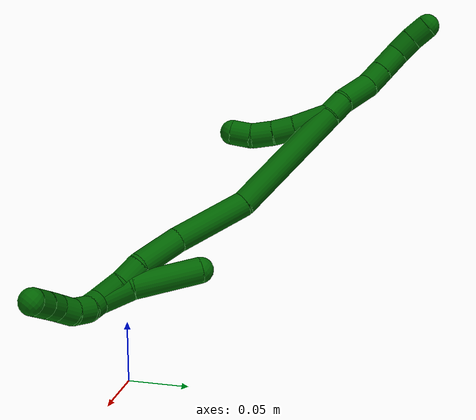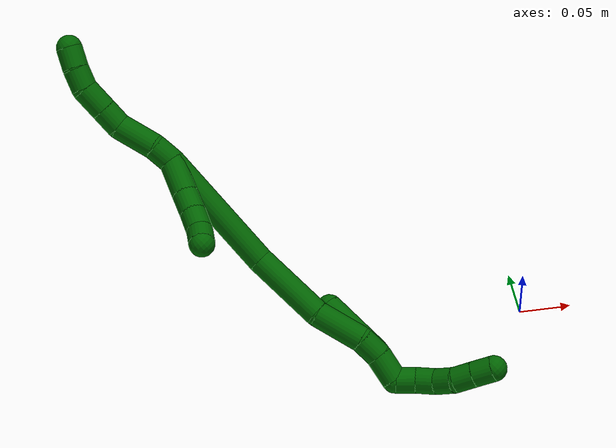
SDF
<sdf version="1.7">
 <world name="default">
  <model name="6">
   <static>0</static>
   <link name="6">
    <collision name="collision-cylinder-e_1_2_8">
     <pose>-0.001484 0.000288 0.011067 -0.026057 -0.133213 0.001738</pose>
     <geometry><cylinder><radius>0.0125</radius><length>0.02234</length></cylinder></geometry>
     <surface>
      <friction><ode><mu>1.16</mu><mu2>1.16</mu2><slip1>0</slip1><slip2>0</slip2></ode></friction>
      <contact><ode><kp>1e+06</kp><kd>1</kd><max_vel>0</max_vel><min_depth>0.001</min_depth></ode></contact>
     </surface>
    </collision>
    <visual name="visual-cylinder-e_1_2_8">
     <pose>-0.001484 0.000288 0.011067 -0.026057 -0.133213 0.001738</pose>
     <geometry><cylinder><radius>0.0125</radius><length>0.02234</length></cylinder></geometry>
     <material><ambient>0 0.392157 0.003922 1</ambient></material>
    </visual>
    <collision name="collision-cylinder-e_2_8_9">
     <pose>-0.00918 0.003621 0.040017 -0.168588 -0.329986 0.028136</pose>
     <geometry><cylinder><radius>0.0125</radius><length>0.038349</length></cylinder></geometry>
     <surface>
      <friction><ode><mu>1.16</mu><mu2>1.16</mu2><slip1>0</slip1><slip2>0</slip2></ode></friction>
      <contact><ode><kp>1e+06</kp><kd>1</kd><max_vel>0</max_vel><min_depth>0.001</min_depth></ode></contact>
     </surface>
    </collision>
    <visual name="visual-cylinder-e_2_8_9">
     <pose>-0.00918 0.003621 0.040017 -0.168588 -0.329986 0.028136</pose>
     <geometry><cylinder><radius>0.0125</radius><length>0.038349</length></cylinder></geometry>
     <material><ambient>0 0.392157 0.003922 1</ambient></material>
    </visual>
    <collision name="collision-cylinder-e_3_9_10">
     <pose>-0.01545 0.007097 0.068767 -0.039827 -0.005189 0.000103</pose>
     <geometry><cylinder><radius>0.0125</radius><length>0.021751</length></cylinder></geometry>
     <surface>
      <friction><ode><mu>1.16</mu><mu2>1.16</mu2><slip1>0</slip1><slip2>0</slip2></ode></friction>
      <contact><ode><kp>1e+06</kp><kd>1</kd><max_vel>0</max_vel><min_depth>0.001</min_depth></ode></contact>
     </surface>
    </collision>
    <visual name="visual-cylinder-e_3_9_10">
     <pose>-0.01545 0.007097 0.068767 -0.039827 -0.005189 0.000103</pose>
     <geometry><cylinder><radius>0.0125</radius><length>0.021751</length></cylinder></geometry>
     <material><ambient>0 0.392157 0.003922 1</ambient></material>
    </visual>
    <collision name="collision-cylinder-e_4_10_11">
     <pose>-0.015576 0.007962 0.092804 -0.032747 -0.005289 8.7e-05</pose>
     <geometry><cylinder><radius>0.0125</radius><length>0.026355</length></cylinder></geometry>
     <surface>
      <friction><ode><mu>1.16</mu><mu2>1.16</mu2><slip1>0</slip1><slip2>0</slip2></ode></friction>
      <contact><ode><kp>1e+06</kp><kd>1</kd><max_vel>0</max_vel><min_depth>0.001</min_depth></ode></contact>
     </surface>
    </collision>
    <visual name="visual-cylinder-e_4_10_11">
     <pose>-0.015576 0.007962 0.092804 -0.032747 -0.005289 8.7e-05</pose>
     <geometry><cylinder><radius>0.0125</radius><length>0.026355</length></cylinder></geometry>
     <material><ambient>0 0.392157 0.003922 1</ambient></material>
    </visual>
    <collision name="collision-cylinder-e_5_11_12">
     <pose>-0.012411 0.009785 0.115707 -0.142033 0.317872 -0.022804</pose>
     <geometry><cylinder><radius>0.0125</radius><length>0.020702</length></cylinder></geometry>
     <surface>
      <friction><ode><mu>1.16</mu><mu2>1.16</mu2><slip1>0</slip1><slip2>0</slip2></ode></friction>
      <contact><ode><kp>1e+06</kp><kd>1</kd><max_vel>0</max_vel><min_depth>0.001</min_depth></ode></contact>
     </surface>
    </collision>
    <visual name="visual-cylinder-e_5_11_12">
     <pose>-0.012411 0.009785 0.115707 -0.142033 0.317872 -0.022804</pose>
     <geometry><cylinder><radius>0.0125</radius><length>0.020702</length></cylinder></geometry>
     <material><ambient>0 0.392157 0.003922 1</ambient></material>
    </visual>
    <collision name="collision-cylinder-e_6_12_6">
     <pose>-0.005216 0.013767 0.134535 -0.277409 0.396523 -0.056077</pose>
     <geometry><cylinder><radius>0.0125</radius><length>0.020503</length></cylinder></geometry>
     <surface>
      <friction><ode><mu>1.16</mu><mu2>1.16</mu2><slip1>0</slip1><slip2>0</slip2></ode></friction>
      <contact><ode><kp>1e+06</kp><kd>1</kd><max_vel>0</max_vel><min_depth>0.001</min_depth></ode></contact>
     </surface>
    </collision>
    <visual name="visual-cylinder-e_6_12_6">
     <pose>-0.005216 0.013767 0.134535 -0.277409 0.396523 -0.056077</pose>
     <geometry><cylinder><radius>0.0125</radius><length>0.020503</length></cylinder></geometry>
     <material><ambient>0 0.392157 0.003922 1</ambient></material>
    </visual>
    <collision name="collision-cylinder-e_1_2_13">
     <pose>-0.004094 -0.010071 -0.014452 2.53298 -0.228345 -0.700171</pose>
     <geometry><cylinder><radius>0.0125</radius><length>0.03617</length></cylinder></geometry>
     <surface>
      <friction><ode><mu>1.16</mu><mu2>1.16</mu2><slip1>0</slip1><slip2>0</slip2></ode></friction>
      <contact><ode><kp>1e+06</kp><kd>1</kd><max_vel>0</max_vel><min_depth>0.001</min_depth></ode></contact>
     </surface>
    </collision>
    <visual name="visual-cylinder-e_1_2_13">
     <pose>-0.004094 -0.010071 -0.014452 2.53298 -0.228345 -0.700171</pose>
     <geometry><cylinder><radius>0.0125</radius><length>0.03617</length></cylinder></geometry>
     <material><ambient>0 0.392157 0.003922 1</ambient></material>
    </visual>
    <collision name="collision-cylinder-e_2_13_14">
     <pose>-0.010218 -0.027155 -0.037168 2.43789 -0.185221 -0.495566</pose>
     <geometry><cylinder><radius>0.0125</radius><length>0.022052</length></cylinder></geometry>
     <surface>
      <friction><ode><mu>1.16</mu><mu2>1.16</mu2><slip1>0</slip1><slip2>0</slip2></ode></friction>
      <contact><ode><kp>1e+06</kp><kd>1</kd><max_vel>0</max_vel><min_depth>0.001</min_depth></ode></contact>
     </surface>
    </collision>
    <visual name="visual-cylinder-e_2_13_14">
     <pose>-0.010218 -0.027155 -0.037168 2.43789 -0.185221 -0.495566</pose>
     <geometry><cylinder><radius>0.0125</radius><length>0.022052</length></cylinder></geometry>
     <material><ambient>0 0.392157 0.003922 1</ambient></material>
    </visual>
    <collision name="collision-cylinder-e_3_14_15">
     <pose>-0.014145 -0.041931 -0.052727 2.32515 -0.176168 -0.402828</pose>
     <geometry><cylinder><radius>0.0125</radius><length>0.021643</length></cylinder></geometry>
     <surface>
      <friction><ode><mu>1.16</mu><mu2>1.16</mu2><slip1>0</slip1><slip2>0</slip2></ode></friction>
      <contact><ode><kp>1e+06</kp><kd>1</kd><max_vel>0</max_vel><min_depth>0.001</min_depth></ode></contact>
     </surface>
    </collision>
    <visual name="visual-cylinder-e_3_14_15">
     <pose>-0.014145 -0.041931 -0.052727 2.32515 -0.176168 -0.402828</pose>
     <geometry><cylinder><radius>0.0125</radius><length>0.021643</length></cylinder></geometry>
     <material><ambient>0 0.392157 0.003922 1</ambient></material>
    </visual>
    <collision name="collision-cylinder-e_4_15_5">
     <pose>-0.017644 -0.05878 -0.064053 1.98829 -0.15983 -0.245034</pose>
     <geometry><cylinder><radius>0.0125</radius><length>0.020136</length></cylinder></geometry>
     <surface>
      <friction><ode><mu>1.16</mu><mu2>1.16</mu2><slip1>0</slip1><slip2>0</slip2></ode></friction>
      <contact><ode><kp>1e+06</kp><kd>1</kd><max_vel>0</max_vel><min_depth>0.001</min_depth></ode></contact>
     </surface>
    </collision>
    <visual name="visual-cylinder-e_4_15_5">
     <pose>-0.017644 -0.05878 -0.064053 1.98829 -0.15983 -0.245034</pose>
     <geometry><cylinder><radius>0.0125</radius><length>0.020136</length></cylinder></geometry>
     <material><ambient>0 0.392157 0.003922 1</ambient></material>
    </visual>
    <collision name="collision-cylinder-e_1_2_16">
     <pose>-0.000488 -0.003771 -0.062802 3.08162 -0.007753 -0.257075</pose>
     <geometry><cylinder><radius>0.0125</radius><length>0.125834</length></cylinder></geometry>
     <surface>
      <friction><ode><mu>1.16</mu><mu2>1.16</mu2><slip1>0</slip1><slip2>0</slip2></ode></friction>
      <contact><ode><kp>1e+06</kp><kd>1</kd><max_vel>0</max_vel><min_depth>0.001</min_depth></ode></contact>
     </surface>
    </collision>
    <visual name="visual-cylinder-e_1_2_16">
     <pose>-0.000488 -0.003771 -0.062802 3.08162 -0.007753 -0.257075</pose>
     <geometry><cylinder><radius>0.0125</radius><length>0.125834</length></cylinder></geometry>
     <material><ambient>0 0.392157 0.003922 1</ambient></material>
    </visual>
    <collision name="collision-cylinder-e_2_16_17">
     <pose>0.003844 -0.019355 -0.161103 2.82034 0.128123 0.753977</pose>
     <geometry><cylinder><radius>0.0125</radius><length>0.075443</length></cylinder></geometry>
     <surface>
      <friction><ode><mu>1.16</mu><mu2>1.16</mu2><slip1>0</slip1><slip2>0</slip2></ode></friction>
      <contact><ode><kp>1e+06</kp><kd>1</kd><max_vel>0</max_vel><min_depth>0.001</min_depth></ode></contact>
     </surface>
    </collision>
    <visual name="visual-cylinder-e_2_16_17">
     <pose>0.003844 -0.019355 -0.161103 2.82034 0.128123 0.753977</pose>
     <geometry><cylinder><radius>0.0125</radius><length>0.075443</length></cylinder></geometry>
     <material><ambient>0 0.392157 0.003922 1</ambient></material>
    </visual>
    <collision name="collision-cylinder-e_3_17_18">
     <pose>0.016491 -0.034928 -0.218926 2.97472 0.332878 2.21781</pose>
     <geometry><cylinder><radius>0.0125</radius><length>0.047909</length></cylinder></geometry>
     <surface>
      <friction><ode><mu>1.16</mu><mu2>1.16</mu2><slip1>0</slip1><slip2>0</slip2></ode></friction>
      <contact><ode><kp>1e+06</kp><kd>1</kd><max_vel>0</max_vel><min_depth>0.001</min_depth></ode></contact>
     </surface>
    </collision>
    <visual name="visual-cylinder-e_3_17_18">
     <pose>0.016491 -0.034928 -0.218926 2.97472 0.332878 2.21781</pose>
     <geometry><cylinder><radius>0.0125</radius><length>0.047909</length></cylinder></geometry>
     <material><ambient>0 0.392157 0.003922 1</ambient></material>
    </visual>
    <collision name="collision-cylinder-e_4_18_19">
     <pose>0.025191 -0.039048 -0.252629 3.11002 0.076489 2.35883</pose>
     <geometry><cylinder><radius>0.0125</radius><length>0.022834</length></cylinder></geometry>
     <surface>
      <friction><ode><mu>1.16</mu><mu2>1.16</mu2><slip1>0</slip1><slip2>0</slip2></ode></friction>
      <contact><ode><kp>1e+06</kp><kd>1</kd><max_vel>0</max_vel><min_depth>0.001</min_depth></ode></contact>
     </surface>
    </collision>
    <visual name="visual-cylinder-e_4_18_19">
     <pose>0.025191 -0.039048 -0.252629 3.11002 0.076489 2.35883</pose>
     <geometry><cylinder><radius>0.0125</radius><length>0.022834</length></cylinder></geometry>
     <material><ambient>0 0.392157 0.003922 1</ambient></material>
    </visual>
    <collision name="collision-cylinder-e_5_19_1">
     <pose>0.024216 -0.042568 -0.277509 2.91168 -0.132434 -1.04264</pose>
     <geometry><cylinder><radius>0.0125</radius><length>0.02798</length></cylinder></geometry>
     <surface>
      <friction><ode><mu>1.16</mu><mu2>1.16</mu2><slip1>0</slip1><slip2>0</slip2></ode></friction>
      <contact><ode><kp>1e+06</kp><kd>1</kd><max_vel>0</max_vel><min_depth>0.001</min_depth></ode></contact>
     </surface>
    </collision>
    <visual name="visual-cylinder-e_5_19_1">
     <pose>0.024216 -0.042568 -0.277509 2.91168 -0.132434 -1.04264</pose>
     <geometry><cylinder><radius>0.0125</radius><length>0.02798</length></cylinder></geometry>
     <material><ambient>0 0.392157 0.003922 1</ambient></material>
    </visual>
    <collision name="collision-cylinder-e_1_1_20">
     <pose>0.023647 -0.038033 -0.276066 -0.475457 0.075891 -0.018398</pose>
     <geometry><cylinder><radius>0.0125</radius><length>0.033717</length></cylinder></geometry>
     <surface>
      <friction><ode><mu>1.16</mu><mu2>1.16</mu2><slip1>0</slip1><slip2>0</slip2></ode></friction>
      <contact><ode><kp>1e+06</kp><kd>1</kd><max_vel>0</max_vel><min_depth>0.001</min_depth></ode></contact>
     </surface>
    </collision>
    <visual name="visual-cylinder-e_1_1_20">
     <pose>0.023647 -0.038033 -0.276066 -0.475457 0.075891 -0.018398</pose>
     <geometry><cylinder><radius>0.0125</radius><length>0.033717</length></cylinder></geometry>
     <material><ambient>0 0.392157 0.003922 1</ambient></material>
    </visual>
    <collision name="collision-cylinder-e_2_20_4">
     <pose>0.019742 -0.01206 -0.233966 -0.592456 -0.157039 0.048019</pose>
     <geometry><cylinder><radius>0.0125</radius><length>0.066283</length></cylinder></geometry>
     <surface>
      <friction><ode><mu>1.16</mu><mu2>1.16</mu2><slip1>0</slip1><slip2>0</slip2></ode></friction>
      <contact><ode><kp>1e+06</kp><kd>1</kd><max_vel>0</max_vel><min_depth>0.001</min_depth></ode></contact>
     </surface>
    </collision>
    <visual name="visual-cylinder-e_2_20_4">
     <pose>0.019742 -0.01206 -0.233966 -0.592456 -0.157039 0.048019</pose>
     <geometry><cylinder><radius>0.0125</radius><length>0.066283</length></cylinder></geometry>
     <material><ambient>0 0.392157 0.003922 1</ambient></material>
    </visual>
    <collision name="collision-cylinder-e_1_1_21">
     <pose>0.029701 -0.045119 -0.297785 -3.05188 0.823003 -2.93661</pose>
     <geometry><cylinder><radius>0.0125</radius><length>0.02</length></cylinder></geometry>
     <surface>
      <friction><ode><mu>1.16</mu><mu2>1.16</mu2><slip1>0</slip1><slip2>0</slip2></ode></friction>
      <contact><ode><kp>1e+06</kp><kd>1</kd><max_vel>0</max_vel><min_depth>0.001</min_depth></ode></contact>
     </surface>
    </collision>
    <visual name="visual-cylinder-e_1_1_21">
     <pose>0.029701 -0.045119 -0.297785 -3.05188 0.823003 -2.93661</pose>
     <geometry><cylinder><radius>0.0125</radius><length>0.02</length></cylinder></geometry>
     <material><ambient>0 0.392157 0.003922 1</ambient></material>
    </visual>
    <collision name="collision-cylinder-e_2_21_22">
     <pose>0.044313 -0.047033 -0.310932 2.76467 0.815463 2.30998</pose>
     <geometry><cylinder><radius>0.0125</radius><length>0.02</length></cylinder></geometry>
     <surface>
      <friction><ode><mu>1.16</mu><mu2>1.16</mu2><slip1>0</slip1><slip2>0</slip2></ode></friction>
      <contact><ode><kp>1e+06</kp><kd>1</kd><max_vel>0</max_vel><min_depth>0.001</min_depth></ode></contact>
     </surface>
    </collision>
    <visual name="visual-cylinder-e_2_21_22">
     <pose>0.044313 -0.047033 -0.310932 2.76467 0.815463 2.30998</pose>
     <geometry><cylinder><radius>0.0125</radius><length>0.02</length></cylinder></geometry>
     <material><ambient>0 0.392157 0.003922 1</ambient></material>
    </visual>
    <collision name="collision-cylinder-e_3_22_23">
     <pose>0.0593 -0.054536 -0.321283 2.24466 0.879805 1.54873</pose>
     <geometry><cylinder><radius>0.0125</radius><length>0.02</length></cylinder></geometry>
     <surface>
      <friction><ode><mu>1.16</mu><mu2>1.16</mu2><slip1>0</slip1><slip2>0</slip2></ode></friction>
      <contact><ode><kp>1e+06</kp><kd>1</kd><max_vel>0</max_vel><min_depth>0.001</min_depth></ode></contact>
     </surface>
    </collision>
    <visual name="visual-cylinder-e_3_22_23">
     <pose>0.0593 -0.054536 -0.321283 2.24466 0.879805 1.54873</pose>
     <geometry><cylinder><radius>0.0125</radius><length>0.02</length></cylinder></geometry>
     <material><ambient>0 0.392157 0.003922 1</ambient></material>
    </visual>
    <collision name="collision-cylinder-e_4_23_24">
     <pose>0.07615 -0.061807 -0.328596 2.53975 1.15411 2.25185</pose>
     <geometry><cylinder><radius>0.0125</radius><length>0.02</length></cylinder></geometry>
     <surface>
      <friction><ode><mu>1.16</mu><mu2>1.16</mu2><slip1>0</slip1><slip2>0</slip2></ode></friction>
      <contact><ode><kp>1e+06</kp><kd>1</kd><max_vel>0</max_vel><min_depth>0.001</min_depth></ode></contact>
     </surface>
    </collision>
    <visual name="visual-cylinder-e_4_23_24">
     <pose>0.07615 -0.061807 -0.328596 2.53975 1.15411 2.25185</pose>
     <geometry><cylinder><radius>0.0125</radius><length>0.02</length></cylinder></geometry>
     <material><ambient>0 0.392157 0.003922 1</ambient></material>
    </visual>
    <collision name="collision-cylinder-e_5_24_3">
     <pose>0.094397 -0.066396 -0.335377 2.55337 1.14381 2.26192</pose>
     <geometry><cylinder><radius>0.0125</radius><length>0.02</length></cylinder></geometry>
     <surface>
      <friction><ode><mu>1.16</mu><mu2>1.16</mu2><slip1>0</slip1><slip2>0</slip2></ode></friction>
      <contact><ode><kp>1e+06</kp><kd>1</kd><max_vel>0</max_vel><min_depth>0.001</min_depth></ode></contact>
     </surface>
    </collision>
    <visual name="visual-cylinder-e_5_24_3">
     <pose>0.094397 -0.066396 -0.335377 2.55337 1.14381 2.26192</pose>
     <geometry><cylinder><radius>0.0125</radius><length>0.02</length></cylinder></geometry>
     <material><ambient>0 0.392157 0.003922 1</ambient></material>
    </visual>
    <collision name="collision-sphere-3">
     <pose>0.103499 -0.068694 -0.338822 0 -0 0</pose>
     <geometry><sphere><radius>0.0125</radius></sphere></geometry>
     <surface>
      <friction><ode><mu>1.16</mu><mu2>1.16</mu2><slip1>0</slip1><slip2>0</slip2></ode></friction>
      <contact><ode><kp>1e+06</kp><kd>1</kd><max_vel>0</max_vel><min_depth>0.001</min_depth></ode></contact>
     </surface>
    </collision>
    <visual name="visual-sphere-3">
     <pose>0.103499 -0.068694 -0.338822 0 -0 0</pose>
     <geometry><sphere><radius>0.0125</radius></sphere></geometry>
     <material><ambient>0 0.392157 0.003922 1</ambient></material>
    </visual>
    <collision name="collision-sphere-24">
     <pose>0.085295 -0.064099 -0.331932 0 -0 0</pose>
     <geometry><sphere><radius>0.0125</radius></sphere></geometry>
     <surface>
      <friction><ode><mu>1.16</mu><mu2>1.16</mu2><slip1>0</slip1><slip2>0</slip2></ode></friction>
      <contact><ode><kp>1e+06</kp><kd>1</kd><max_vel>0</max_vel><min_depth>0.001</min_depth></ode></contact>
     </surface>
    </collision>
    <visual name="visual-sphere-24">
     <pose>0.085295 -0.064099 -0.331932 0 -0 0</pose>
     <geometry><sphere><radius>0.0125</radius></sphere></geometry>
     <material><ambient>0 0.392157 0.003922 1</ambient></material>
    </visual>
    <collision name="collision-sphere-23">
     <pose>0.067006 -0.059516 -0.325259 0 -0 0</pose>
     <geometry><sphere><radius>0.0125</radius></sphere></geometry>
     <surface>
      <friction><ode><mu>1.16</mu><mu2>1.16</mu2><slip1>0</slip1><slip2>0</slip2></ode></friction>
      <contact><ode><kp>1e+06</kp><kd>1</kd><max_vel>0</max_vel><min_depth>0.001</min_depth></ode></contact>
     </surface>
    </collision>
    <visual name="visual-sphere-23">
     <pose>0.067006 -0.059516 -0.325259 0 -0 0</pose>
     <geometry><sphere><radius>0.0125</radius></sphere></geometry>
     <material><ambient>0 0.392157 0.003922 1</ambient></material>
    </visual>
    <collision name="collision-sphere-22">
     <pose>0.051594 -0.049556 -0.317306 0 -0 0</pose>
     <geometry><sphere><radius>0.0125</radius></sphere></geometry>
     <surface>
      <friction><ode><mu>1.16</mu><mu2>1.16</mu2><slip1>0</slip1><slip2>0</slip2></ode></friction>
      <contact><ode><kp>1e+06</kp><kd>1</kd><max_vel>0</max_vel><min_depth>0.001</min_depth></ode></contact>
     </surface>
    </collision>
    <visual name="visual-sphere-22">
     <pose>0.051594 -0.049556 -0.317306 0 -0 0</pose>
     <geometry><sphere><radius>0.0125</radius></sphere></geometry>
     <material><ambient>0 0.392157 0.003922 1</ambient></material>
    </visual>
    <collision name="collision-sphere-21">
     <pose>0.037033 -0.044509 -0.304558 0 -0 0</pose>
     <geometry><sphere><radius>0.0125</radius></sphere></geometry>
     <surface>
      <friction><ode><mu>1.16</mu><mu2>1.16</mu2><slip1>0</slip1><slip2>0</slip2></ode></friction>
      <contact><ode><kp>1e+06</kp><kd>1</kd><max_vel>0</max_vel><min_depth>0.001</min_depth></ode></contact>
     </surface>
    </collision>
    <visual name="visual-sphere-21">
     <pose>0.037033 -0.044509 -0.304558 0 -0 0</pose>
     <geometry><sphere><radius>0.0125</radius></sphere></geometry>
     <material><ambient>0 0.392157 0.003922 1</ambient></material>
    </visual>
    <collision name="collision-sphere-4">
     <pose>0.014559 0.006218 -0.206811 0 -0 0</pose>
     <geometry><sphere><radius>0.0125</radius></sphere></geometry>
     <surface>
      <friction><ode><mu>1.16</mu><mu2>1.16</mu2><slip1>0</slip1><slip2>0</slip2></ode></friction>
      <contact><ode><kp>1e+06</kp><kd>1</kd><max_vel>0</max_vel><min_depth>0.001</min_depth></ode></contact>
     </surface>
    </collision>
    <visual name="visual-sphere-4">
     <pose>0.014559 0.006218 -0.206811 0 -0 0</pose>
     <geometry><sphere><radius>0.0125</radius></sphere></geometry>
     <material><ambient>0 0.392157 0.003922 1</ambient></material>
    </visual>
    <collision name="collision-sphere-20">
     <pose>0.024925 -0.030338 -0.261121 0 -0 0</pose>
     <geometry><sphere><radius>0.0125</radius></sphere></geometry>
     <surface>
      <friction><ode><mu>1.16</mu><mu2>1.16</mu2><slip1>0</slip1><slip2>0</slip2></ode></friction>
      <contact><ode><kp>1e+06</kp><kd>1</kd><max_vel>0</max_vel><min_depth>0.001</min_depth></ode></contact>
     </surface>
    </collision>
    <visual name="visual-sphere-20">
     <pose>0.024925 -0.030338 -0.261121 0 -0 0</pose>
     <geometry><sphere><radius>0.0125</radius></sphere></geometry>
     <material><ambient>0 0.392157 0.003922 1</ambient></material>
    </visual>
    <collision name="collision-sphere-12">
     <pose>-0.009175 0.011177 0.125441 0 -0 0</pose>
     <geometry><sphere><radius>0.0125</radius></sphere></geometry>
     <surface>
      <friction><ode><mu>1.16</mu><mu2>1.16</mu2><slip1>0</slip1><slip2>0</slip2></ode></friction>
      <contact><ode><kp>1e+06</kp><kd>1</kd><max_vel>0</max_vel><min_depth>0.001</min_depth></ode></contact>
     </surface>
    </collision>
    <visual name="visual-sphere-12">
     <pose>-0.009175 0.011177 0.125441 0 -0 0</pose>
     <geometry><sphere><radius>0.0125</radius></sphere></geometry>
     <material><ambient>0 0.392157 0.003922 1</ambient></material>
    </visual>
    <collision name="collision-sphere-11">
     <pose>-0.015646 0.008393 0.105974 0 -0 0</pose>
     <geometry><sphere><radius>0.0125</radius></sphere></geometry>
     <surface>
      <friction><ode><mu>1.16</mu><mu2>1.16</mu2><slip1>0</slip1><slip2>0</slip2></ode></friction>
      <contact><ode><kp>1e+06</kp><kd>1</kd><max_vel>0</max_vel><min_depth>0.001</min_depth></ode></contact>
     </surface>
    </collision>
    <visual name="visual-sphere-11">
     <pose>-0.015646 0.008393 0.105974 0 -0 0</pose>
     <geometry><sphere><radius>0.0125</radius></sphere></geometry>
     <material><ambient>0 0.392157 0.003922 1</ambient></material>
    </visual>
    <collision name="collision-sphere-10">
     <pose>-0.015506 0.00753 0.079634 0 -0 0</pose>
     <geometry><sphere><radius>0.0125</radius></sphere></geometry>
     <surface>
      <friction><ode><mu>1.16</mu><mu2>1.16</mu2><slip1>0</slip1><slip2>0</slip2></ode></friction>
      <contact><ode><kp>1e+06</kp><kd>1</kd><max_vel>0</max_vel><min_depth>0.001</min_depth></ode></contact>
     </surface>
    </collision>
    <visual name="visual-sphere-10">
     <pose>-0.015506 0.00753 0.079634 0 -0 0</pose>
     <geometry><sphere><radius>0.0125</radius></sphere></geometry>
     <material><ambient>0 0.392157 0.003922 1</ambient></material>
    </visual>
    <collision name="collision-sphere-9">
     <pose>-0.015393 0.006664 0.0579 0 -0 0</pose>
     <geometry><sphere><radius>0.0125</radius></sphere></geometry>
     <surface>
      <friction><ode><mu>1.16</mu><mu2>1.16</mu2><slip1>0</slip1><slip2>0</slip2></ode></friction>
      <contact><ode><kp>1e+06</kp><kd>1</kd><max_vel>0</max_vel><min_depth>0.001</min_depth></ode></contact>
     </surface>
    </collision>
    <visual name="visual-sphere-9">
     <pose>-0.015393 0.006664 0.0579 0 -0 0</pose>
     <geometry><sphere><radius>0.0125</radius></sphere></geometry>
     <material><ambient>0 0.392157 0.003922 1</ambient></material>
    </visual>
    <collision name="collision-sphere-2">
     <geometry><sphere><radius>0.0125</radius></sphere></geometry>
     <surface>
      <friction><ode><mu>1.16</mu><mu2>1.16</mu2><slip1>0</slip1><slip2>0</slip2></ode></friction>
      <contact><ode><kp>1e+06</kp><kd>1</kd><max_vel>0</max_vel><min_depth>0.001</min_depth></ode></contact>
     </surface>
    </collision>
    <visual name="visual-sphere-2">
     <geometry><sphere><radius>0.0125</radius></sphere></geometry>
     <material><ambient>0 0.392157 0.003922 1</ambient></material>
    </visual>
    <collision name="collision-sphere-19">
     <pose>0.026064 -0.039407 -0.264007 0 -0 0</pose>
     <geometry><sphere><radius>0.0125</radius></sphere></geometry>
     <surface>
      <friction><ode><mu>1.16</mu><mu2>1.16</mu2><slip1>0</slip1><slip2>0</slip2></ode></friction>
      <contact><ode><kp>1e+06</kp><kd>1</kd><max_vel>0</max_vel><min_depth>0.001</min_depth></ode></contact>
     </surface>
    </collision>
    <visual name="visual-sphere-19">
     <pose>0.026064 -0.039407 -0.264007 0 -0 0</pose>
     <geometry><sphere><radius>0.0125</radius></sphere></geometry>
     <material><ambient>0 0.392157 0.003922 1</ambient></material>
    </visual>
    <collision name="collision-sphere-8">
     <pose>-0.002967 0.000577 0.022135 0 -0 0</pose>
     <geometry><sphere><radius>0.0125</radius></sphere></geometry>
     <surface>
      <friction><ode><mu>1.16</mu><mu2>1.16</mu2><slip1>0</slip1><slip2>0</slip2></ode></friction>
      <contact><ode><kp>1e+06</kp><kd>1</kd><max_vel>0</max_vel><min_depth>0.001</min_depth></ode></contact>
     </surface>
    </collision>
    <visual name="visual-sphere-8">
     <pose>-0.002967 0.000577 0.022135 0 -0 0</pose>
     <geometry><sphere><radius>0.0125</radius></sphere></geometry>
     <material><ambient>0 0.392157 0.003922 1</ambient></material>
    </visual>
    <collision name="collision-sphere-6">
     <pose>-0.001257 0.016356 0.14363 0 -0 0</pose>
     <geometry><sphere><radius>0.0125</radius></sphere></geometry>
     <surface>
      <friction><ode><mu>1.16</mu><mu2>1.16</mu2><slip1>0</slip1><slip2>0</slip2></ode></friction>
      <contact><ode><kp>1e+06</kp><kd>1</kd><max_vel>0</max_vel><min_depth>0.001</min_depth></ode></contact>
     </surface>
    </collision>
    <visual name="visual-sphere-6">
     <pose>-0.001257 0.016356 0.14363 0 -0 0</pose>
     <geometry><sphere><radius>0.0125</radius></sphere></geometry>
     <material><ambient>0 0.392157 0.003922 1</ambient></material>
    </visual>
    <collision name="collision-sphere-13">
     <pose>-0.008188 -0.020142 -0.028905 0 -0 0</pose>
     <geometry><sphere><radius>0.0125</radius></sphere></geometry>
     <surface>
      <friction><ode><mu>1.16</mu><mu2>1.16</mu2><slip1>0</slip1><slip2>0</slip2></ode></friction>
      <contact><ode><kp>1e+06</kp><kd>1</kd><max_vel>0</max_vel><min_depth>0.001</min_depth></ode></contact>
     </surface>
    </collision>
    <visual name="visual-sphere-13">
     <pose>-0.008188 -0.020142 -0.028905 0 -0 0</pose>
     <geometry><sphere><radius>0.0125</radius></sphere></geometry>
     <material><ambient>0 0.392157 0.003922 1</ambient></material>
    </visual>
    <collision name="collision-sphere-14">
     <pose>-0.012249 -0.034167 -0.045431 0 -0 0</pose>
     <geometry><sphere><radius>0.0125</radius></sphere></geometry>
     <surface>
      <friction><ode><mu>1.16</mu><mu2>1.16</mu2><slip1>0</slip1><slip2>0</slip2></ode></friction>
      <contact><ode><kp>1e+06</kp><kd>1</kd><max_vel>0</max_vel><min_depth>0.001</min_depth></ode></contact>
     </surface>
    </collision>
    <visual name="visual-sphere-14">
     <pose>-0.012249 -0.034167 -0.045431 0 -0 0</pose>
     <geometry><sphere><radius>0.0125</radius></sphere></geometry>
     <material><ambient>0 0.392157 0.003922 1</ambient></material>
    </visual>
    <collision name="collision-sphere-15">
     <pose>-0.016042 -0.049694 -0.060023 0 -0 0</pose>
     <geometry><sphere><radius>0.0125</radius></sphere></geometry>
     <surface>
      <friction><ode><mu>1.16</mu><mu2>1.16</mu2><slip1>0</slip1><slip2>0</slip2></ode></friction>
      <contact><ode><kp>1e+06</kp><kd>1</kd><max_vel>0</max_vel><min_depth>0.001</min_depth></ode></contact>
     </surface>
    </collision>
    <visual name="visual-sphere-15">
     <pose>-0.016042 -0.049694 -0.060023 0 -0 0</pose>
     <geometry><sphere><radius>0.0125</radius></sphere></geometry>
     <material><ambient>0 0.392157 0.003922 1</ambient></material>
    </visual>
    <collision name="collision-sphere-5">
     <pose>-0.019246 -0.067866 -0.068083 0 -0 0</pose>
     <geometry><sphere><radius>0.0125</radius></sphere></geometry>
     <surface>
      <friction><ode><mu>1.16</mu><mu2>1.16</mu2><slip1>0</slip1><slip2>0</slip2></ode></friction>
      <contact><ode><kp>1e+06</kp><kd>1</kd><max_vel>0</max_vel><min_depth>0.001</min_depth></ode></contact>
     </surface>
    </collision>
    <visual name="visual-sphere-5">
     <pose>-0.019246 -0.067866 -0.068083 0 -0 0</pose>
     <geometry><sphere><radius>0.0125</radius></sphere></geometry>
     <material><ambient>0 0.392157 0.003922 1</ambient></material>
    </visual>
    <collision name="collision-sphere-16">
     <pose>-0.000976 -0.007541 -0.125604 0 -0 0</pose>
     <geometry><sphere><radius>0.0125</radius></sphere></geometry>
     <surface>
      <friction><ode><mu>1.16</mu><mu2>1.16</mu2><slip1>0</slip1><slip2>0</slip2></ode></friction>
      <contact><ode><kp>1e+06</kp><kd>1</kd><max_vel>0</max_vel><min_depth>0.001</min_depth></ode></contact>
     </surface>
    </collision>
    <visual name="visual-sphere-16">
     <pose>-0.000976 -0.007541 -0.125604 0 -0 0</pose>
     <geometry><sphere><radius>0.0125</radius></sphere></geometry>
     <material><ambient>0 0.392157 0.003922 1</ambient></material>
    </visual>
    <collision name="collision-sphere-17">
     <pose>0.008664 -0.031168 -0.196601 0 -0 0</pose>
     <geometry><sphere><radius>0.0125</radius></sphere></geometry>
     <surface>
      <friction><ode><mu>1.16</mu><mu2>1.16</mu2><slip1>0</slip1><slip2>0</slip2></ode></friction>
      <contact><ode><kp>1e+06</kp><kd>1</kd><max_vel>0</max_vel><min_depth>0.001</min_depth></ode></contact>
     </surface>
    </collision>
    <visual name="visual-sphere-17">
     <pose>0.008664 -0.031168 -0.196601 0 -0 0</pose>
     <geometry><sphere><radius>0.0125</radius></sphere></geometry>
     <material><ambient>0 0.392157 0.003922 1</ambient></material>
    </visual>
    <collision name="collision-sphere-18">
     <pose>0.024319 -0.038688 -0.241251 0 -0 0</pose>
     <geometry><sphere><radius>0.0125</radius></sphere></geometry>
     <surface>
      <friction><ode><mu>1.16</mu><mu2>1.16</mu2><slip1>0</slip1><slip2>0</slip2></ode></friction>
      <contact><ode><kp>1e+06</kp><kd>1</kd><max_vel>0</max_vel><min_depth>0.001</min_depth></ode></contact>
     </surface>
    </collision>
    <visual name="visual-sphere-18">
     <pose>0.024319 -0.038688 -0.241251 0 -0 0</pose>
     <geometry><sphere><radius>0.0125</radius></sphere></geometry>
     <material><ambient>0 0.392157 0.003922 1</ambient></material>
    </visual>
    <collision name="collision-sphere-1">
     <pose>0.022369 -0.045728 -0.291012 0 -0 0</pose>
     <geometry><sphere><radius>0.0125</radius></sphere></geometry>
     <surface>
      <friction><ode><mu>1.16</mu><mu2>1.16</mu2><slip1>0</slip1><slip2>0</slip2></ode></friction>
      <contact><ode><kp>1e+06</kp><kd>1</kd><max_vel>0</max_vel><min_depth>0.001</min_depth></ode></contact>
     </surface>
    </collision>
    <visual name="visual-sphere-1">
     <pose>0.022369 -0.045728 -0.291012 0 -0 0</pose>
     <geometry><sphere><radius>0.0125</radius></sphere></geometry>
     <material><ambient>0 0.392157 0.003922 1</ambient></material>
    </visual>
    <inertial>
     <pose>0.010566 -0.02044 -0.124893 0 -0 0</pose>
     <mass>0.75</mass>
     <inertia>
      <ixx>0.000233</ixx>
      <ixy>0</ixy>
      <ixz>0</ixz>
      <iyy>-0.000158</iyy>
      <iyz>0</iyz>
      <izz>-5e-06</izz>
     </inertia>
    </inertial>
   </link>
   <pose>-0.322627 0.102991 0.159186 -0.690894 -0.611616 0.257964</pose>
  </model>
 </world>
</sdf>
